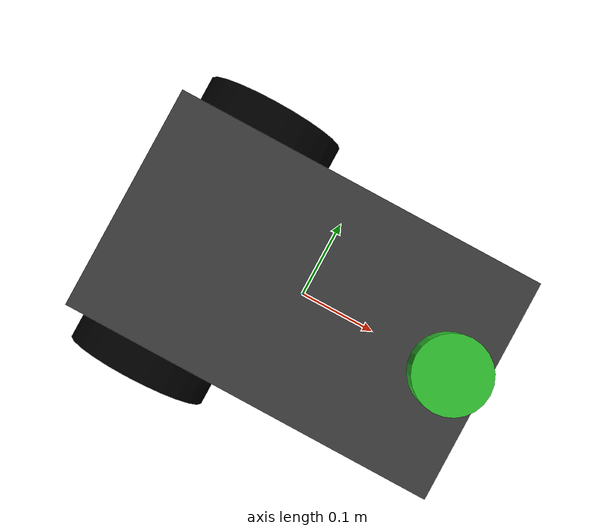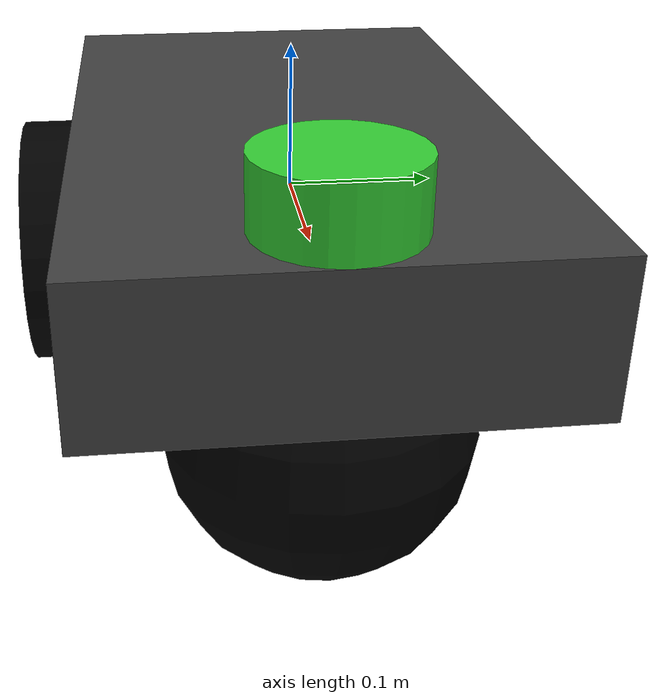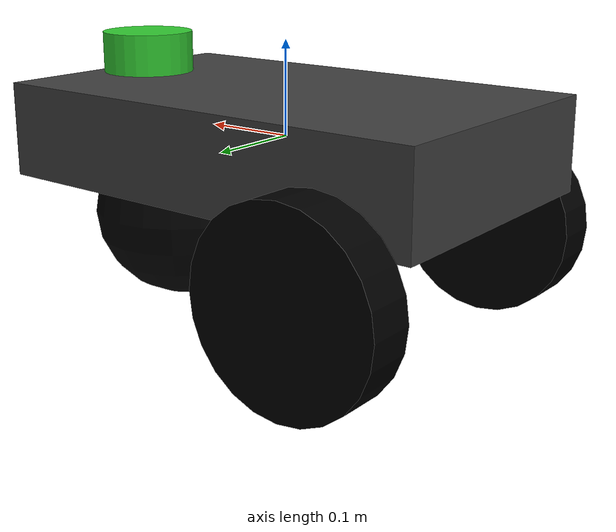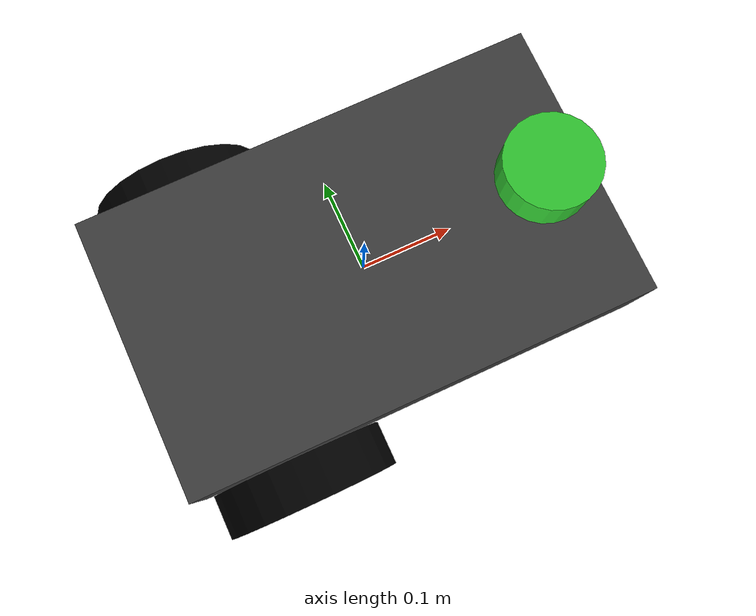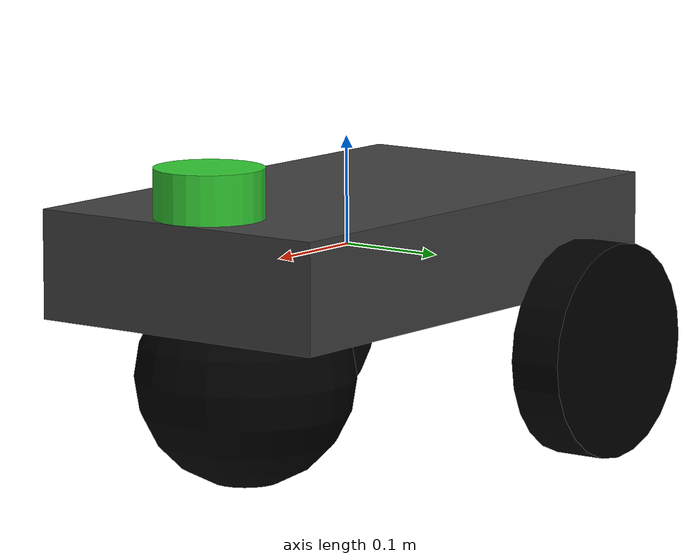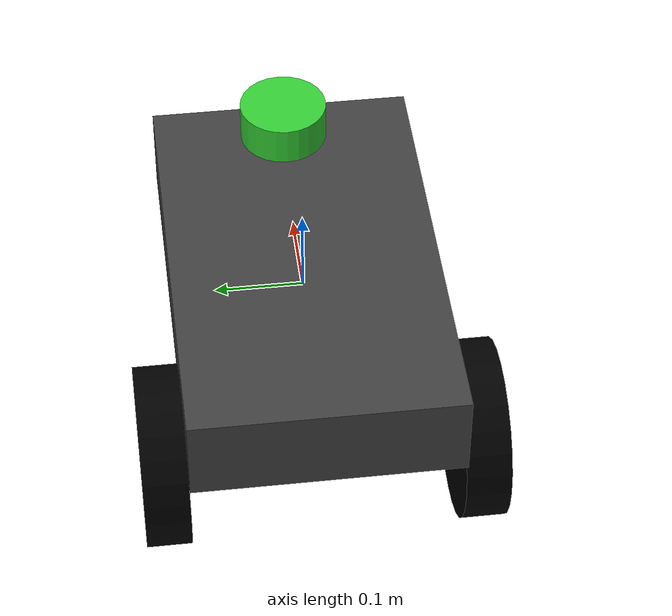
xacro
<?xml version="1.0"?>

<robot name="differential_drive_robot" xmlns:xacro="http://www.ros.org/wiki/xacro">

  <!-- Robot Parameters      -->
  <xacro:property name="PI" value="3.14159265"/>

  <!-- Thân robot -->
  <xacro:property name="body_length" value="0.5"/>
  <xacro:property name="body_width"  value="0.3"/>  <!-- be ngang C cua robot-->
  <xacro:property name="body_height" value="0.1"/>
  <xacro:property name="body_density" value="7850.0"/> <!-- thép -->
  <xacro:property name="body_mass" value="${body_density * body_length * body_height * body_width}"/>
  <xacro:property name="body_inertia_x" value="${1.0/12.0 * body_mass * (body_height*body_height + body_width*body_width)}"/>
  <xacro:property name="body_inertia_y" value="${1.0/12.0 * body_mass * (body_length*body_length + body_height*body_height)}"/>
  <xacro:property name="body_inertia_z" value="${1.0/12.0 * body_mass * (body_length*body_length + body_width*body_width)}"/>

  <!-- Bánh xe -->
  <xacro:property name="wheel_radius" value="0.1"/>
  <xacro:property name="wheel_width"  value="0.05"/>
  <xacro:property name="wheel_separation" value="${body_width + wheel_width}"/>
  <xacro:property name="wheel_offset" value="${body_length/2 - wheel_radius}"/>
  <xacro:property name="wheel_density" value="900"/> <!-- rubber -->
  <xacro:property name="wheel_mass" value="${wheel_density * PI * wheel_radius * wheel_radius * wheel_width}"/>
  <xacro:property name="wheel_inertia_x" value="${1.0/12.0 * wheel_mass * (3*wheel_radius*wheel_radius + wheel_width*wheel_width)}"/>
  <xacro:property name="wheel_inertia_y" value="${1.0/12.0 * wheel_mass * (3*wheel_radius*wheel_radius + wheel_width*wheel_width)}"/>
  <xacro:property name="wheel_inertia_z" value="${1.0/2.0 * wheel_mass * wheel_radius * wheel_radius}"/>

  <!-- Bánh caster -->
  <xacro:property name="caster_radius" value="0.1"/>
  <xacro:property name="caster_offset" value="${body_length/2 - caster_radius}"/>
  <xacro:property name="caster_density" value="0.1"/>
  <xacro:property name="caster_mass" value="${caster_density * 4.0/3.0 * PI * caster_radius * caster_radius * caster_radius}"/>
  <xacro:property name="caster_inertia_x" value="${2.0/5.0 * caster_mass * caster_radius * caster_radius}"/>
  <xacro:property name="caster_inertia_y" value="${2.0/5.0 * caster_mass * caster_radius * caster_radius}"/>
  <xacro:property name="caster_inertia_z" value="${2.0/5.0 * caster_mass * caster_radius * caster_radius}"/>

  <!-- Điều khiển -->
  <xacro:property name="max_linear_acceleration" value="10"/>

  <!-- Links                 -->

  <!-- Thân chính -->
  <link name="body_link">
    <visual>
      <origin xyz="0 0 0" rpy="0 0 0"/>
      <geometry>
        <box size="${body_length} ${body_width} ${body_height}"/>
      </geometry>
      <material name="body_material">
        <color rgba="0.25 0.25 0.25 1.0"/>
      </material>
    </visual>
    <collision>
      <origin xyz="0 0 0" rpy="0 0 0"/>
      <geometry>
        <box size="${body_length} ${body_width} ${body_height}"/>
      </geometry>
    </collision>
    <inertial>
      <!-- Giữ 10 kg theo bản gốc -->
      <mass value="10"/>
      <inertia ixx="${body_inertia_x}" ixy="0.0" ixz="0.0"
               iyy="${body_inertia_y}" iyz="0.0" izz="${body_inertia_z}"/>
      <origin xyz="0 0 0" rpy="0 0 0"/>
    </inertial>
  </link>

  <!-- Bánh trái -->
  <link name="left_wheel_link">
    <visual>
      <origin xyz="0 0 0" rpy="1.570795 0 0"/>
      <geometry>
        <cylinder radius="${wheel_radius}" length="${wheel_width}"/>
      </geometry>
      <material name="wheel_material">
        <color rgba="0 0 0 1.0"/>
      </material>
    </visual>
    <collision>
      <origin xyz="0 0 0" rpy="1.570795 0 0"/>
      <geometry>
        <cylinder radius="${wheel_radius}" length="${wheel_width}"/>
      </geometry>
    </collision>
    <inertial>
      <mass value="2"/>
      <inertia ixx="${wheel_inertia_x}" ixy="0.0" ixz="0.0"
               iyy="${wheel_inertia_y}" iyz="0.0" izz="${wheel_inertia_z}"/>
      <origin xyz="0 0 0" rpy="1.570795 0 0"/>
    </inertial>
  </link>

  <!-- Bánh phải -->
  <link name="right_wheel_link">
    <visual>
      <origin xyz="0 0 0" rpy="1.570795 0 0"/>
      <geometry>
        <cylinder radius="${wheel_radius}" length="${wheel_width}"/>
      </geometry>
      <material name="wheel_material">
        <color rgba="0 0 0 1.0"/>
      </material>
    </visual>
    <collision>
      <origin xyz="0 0 0" rpy="1.570795 0 0"/>
      <geometry>
        <cylinder radius="${wheel_radius}" length="${wheel_width}"/>
      </geometry>
    </collision>
    <inertial>
      <mass value="2"/>
      <inertia ixx="${wheel_inertia_x}" ixy="0.0" ixz="0.0"
               iyy="${wheel_inertia_y}" iyz="0.0" izz="${wheel_inertia_z}"/>
      <origin xyz="0 0 0" rpy="1.570795 0 0"/>
    </inertial>
  </link>

  <!-- Caster -->
  <link name="caster_link">
    <visual>
      <origin xyz="0 0 0" rpy="0 0 0"/>
      <geometry>
        <sphere radius="${caster_radius}"/>
      </geometry>
      <material name="caster_material">
        <color rgba="0 0 0 1.0"/>
      </material>
    </visual>
    <collision>
      <origin xyz="0 0 0" rpy="0 0 0"/>
      <geometry>
        <sphere radius="${caster_radius}"/>
      </geometry>
    </collision>
    <inertial>
      <mass value="0.5"/>
      <inertia ixx="${caster_inertia_x}" ixy="0.0" ixz="0.0"
               iyy="${caster_inertia_y}" iyz="0.0" izz="${caster_inertia_z}"/>
      <origin xyz="0 0 0" rpy="0 0 0"/>
    </inertial>
  </link>

  <!-- LiDAR -->
  <link name="lidar_link">
    <visual>
      <origin xyz="0 0 0" rpy="0 0 0"/>
      <geometry>
        <cylinder radius="0.05" length="0.05"/>
      </geometry>
      <material name="lidar_material">
        <color rgba="0.2 0.8 0.2 1.0"/>
      </material>
    </visual>
    <collision>
      <origin xyz="0 0 0" rpy="0 0 0"/>
      <geometry>
        <cylinder radius="0.05" length="0.05"/>
      </geometry>
    </collision>
    <inertial>
      <mass value="0.2"/>
      <inertia ixx="1e-4" ixy="0.0" ixz="0.0"
               iyy="1e-4" iyz="0.0" izz="1e-4"/>
      <origin xyz="0 0 0" rpy="0 0 0"/>
    </inertial>
  </link>

  <!-- Joints                -->

  <!-- Joint bánh trái -->
  <joint name="left_wheel_joint" type="continuous">
    <origin xyz="-${wheel_offset} ${wheel_separation/2} -${wheel_radius}" rpy="0 0 0"/>
    <parent link="body_link"/>
    <child link="left_wheel_link"/>
    <axis xyz="0 1 0"/>
    <limit effort="100" velocity="10.0"/>
    <dynamics damping="0.1" friction="0.1"/>
  </joint>

  <!-- Joint bánh phải -->
  <joint name="right_wheel_joint" type="continuous">
    <origin xyz="-${wheel_offset} ${-wheel_separation/2} -${wheel_radius}" rpy="0 0 0"/>
    <parent link="body_link"/>
    <child link="right_wheel_link"/>
    <axis xyz="0 1 0"/>
    <limit effort="100" velocity="10.0"/>
    <dynamics damping="0.1" friction="0.1"/>
  </joint>

  <!-- Joint caster -->
  <joint name="caster_joint" type="fixed">
    <origin xyz="${caster_offset} 0 -${caster_radius}" rpy="0 0 0"/>
    <parent link="body_link"/>
    <child link="caster_link"/>
  </joint>

  <!-- Joint LiDAR -->
  <joint name="lidar_joint" type="fixed">
    <!-- đặt lidar phía trước, trên nóc thân -->
    <origin xyz="${body_length/2 - 0.05} 0 ${body_height/2 + 0.02}" rpy="0 0 0"/>
    <parent link="body_link"/>
    <child link="lidar_link"/>
  </joint>

  <!-- Gazebo friction       -->

  <gazebo reference="body_link">
    <mu1>1.0</mu1>
    <mu2>1.0</mu2>
  </gazebo>

  <gazebo reference="right_wheel_link">
    <mu1>1.0</mu1>
    <mu2>1.0</mu2>
  </gazebo>

  <gazebo reference="left_wheel_link">
    <mu1>1.0</mu1>
    <mu2>1.0</mu2>
  </gazebo>

  <gazebo reference="caster_link">
    <mu1>0.00001</mu1>
    <mu2>0.00001</mu2>
  </gazebo>

  <!-- LiDAR sensor (GZ Sim) -->

  <gazebo reference="lidar_link">
    <sensor name="gpu_lidar" type="gpu_lidar">
      <!-- pose trong frame lidar_link -->
      <pose>0 0 0 0 0 0</pose>

      <!-- topic trong Gazebo (GZ) -->
      <topic>/lidar</topic>
      <update_rate>10</update_rate>
      <always_on>1</always_on>
      <visualize>true</visualize>

      <ray>
        <scan>
          <horizontal>
            <samples>360</samples>
            <resolution>1</resolution>
            <min_angle>-3.1415</min_angle>
            <max_angle>3.1415</max_angle>
          </horizontal>
          <vertical>
            <samples>1</samples>
            <resolution>1</resolution>
            <min_angle>0</min_angle>
            <max_angle>0</max_angle>
          </vertical>
        </scan>
        <range>
          <min>0.2</min>
          <max>12.0</max>
          <resolution>0.01</resolution>
        </range>
        <noise>
          <type>gaussian</type>
          <mean>0.0</mean>
          <stddev>0.01</stddev>
        </noise>
      </ray>
    </sensor>
  </gazebo>

  <!-- Gazebo plugins        -->

  <gazebo>
    <!-- Differential drive -->
    <plugin filename="gz-sim-diff-drive-system" name="gz::sim::systems::DiffDrive">
      <right_joint>right_wheel_joint</right_joint>
      <left_joint>left_wheel_joint</left_joint>
      <wheel_separation>${wheel_separation}</wheel_separation>
      <wheel_radius>${wheel_radius}</wheel_radius>
      <max_linear_acceleration>${max_linear_acceleration}</max_linear_acceleration>
      <odom_publish_frequency>100</odom_publish_frequency>
      <topic>cmd_vel</topic>
      <odom_topic>odom</odom_topic>
    </plugin>

    <!-- Joint states -->
    <plugin filename="gz-sim-joint-state-publisher-system"
            name="gz::sim::systems::JointStatePublisher">
      <topic>joint_states</topic>
      <joint_name>right_wheel_joint</joint_name>
      <joint_name>left_wheel_joint</joint_name>
    </plugin>
  </gazebo>

</robot>
